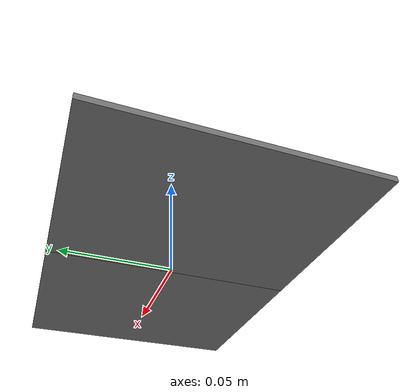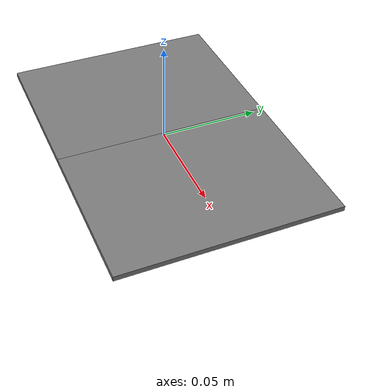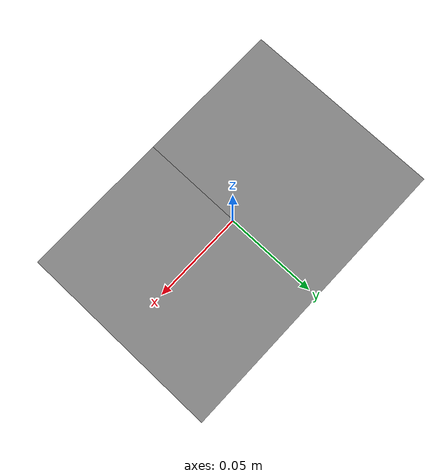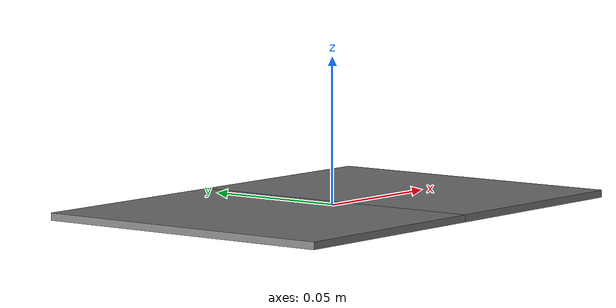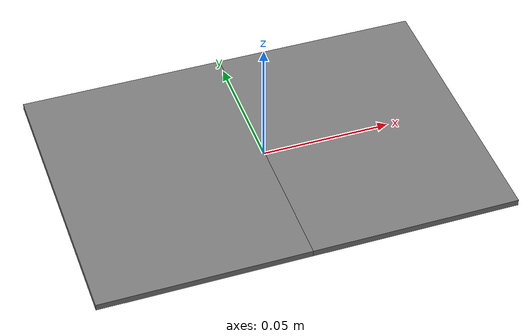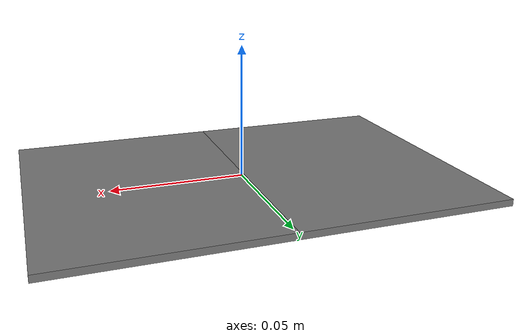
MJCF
<mujoco model="instruction_manual_bifold">
  <compiler angle="radian"/>
  <worldbody>
    <body name="manual_root">
      <geom name="left_page" type="box" pos="-0.040000 0 0" size="0.040000 0.055000 0.001250"/>
      <body name="right_page" pos="0 0 0">
        <joint name="manual_hinge" type="hinge" axis="0 1 0" limited="true" range="-2.6 2.6"/>
        <geom name="right_page" type="box" pos="0.040000 0 0" size="0.040000 0.055000 0.001250"/>
      </body>
    </body>
  </worldbody>
</mujoco>
